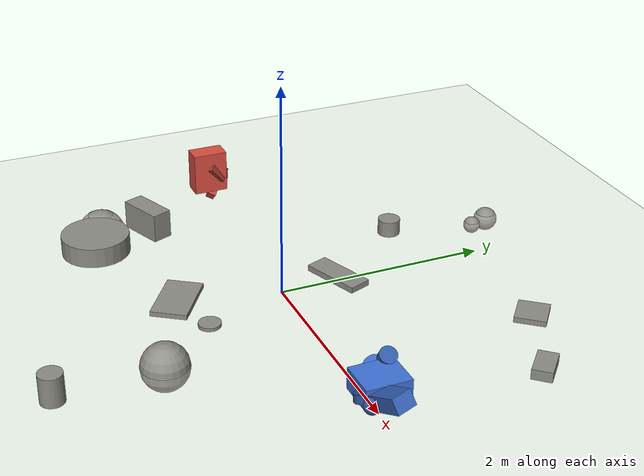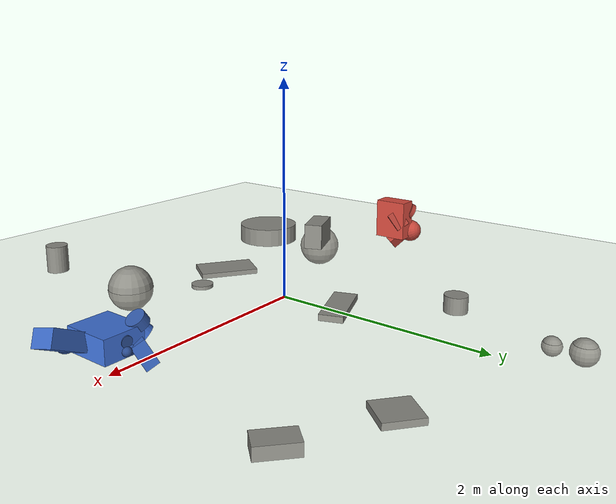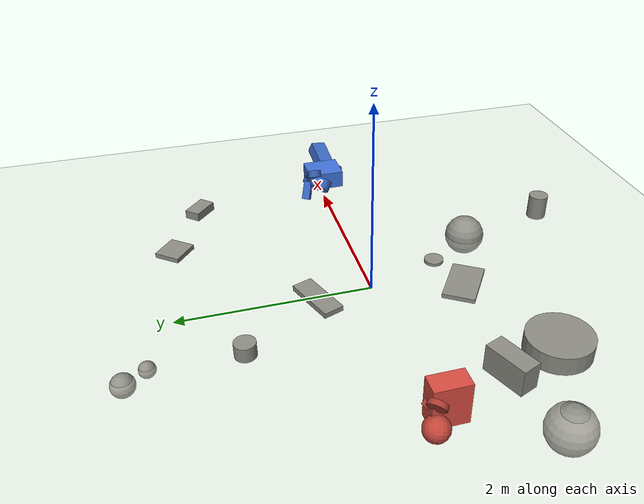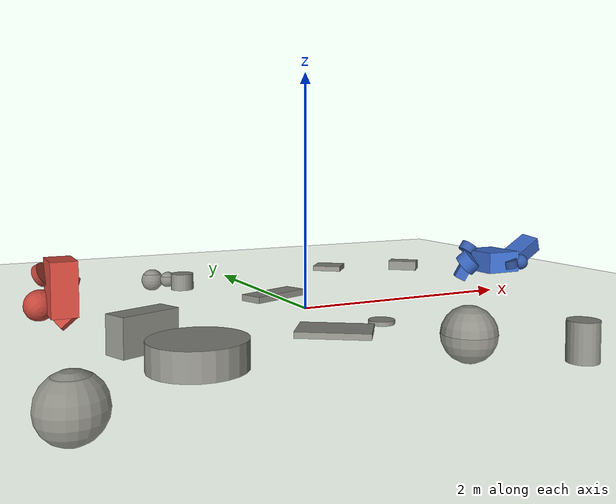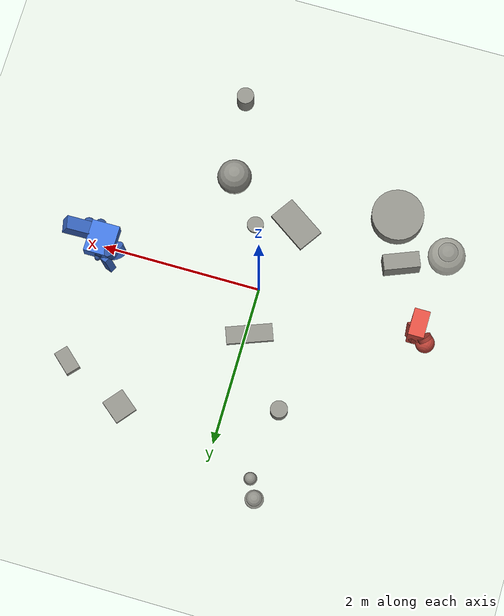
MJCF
<mujoco model="rabbitstew"><compiler angle="radian" autolimits="true" /><option timestep="0.005" gravity="0 0 -9.81" /><default><geom friction="1 0.005 0.0001" condim="3" solref="0.01 1" solimp="0.9 0.95 0.001" /><joint armature="0.005" /><motor ctrllimited="true" ctrlrange="-1 1" /></default><worldbody><geom name="floor" type="plane" size="0 0 1" rgba="0.85 0.85 0.8 1" /><light pos="0 0 4" dir="0 0 -1" diffuse="0.8 0.8 0.8" /><geom name="scenery0" pos="0.274393 -0.789465 0.0168193" quat="1 0 0 0" rgba="0.55 0.55 0.52 1" type="cylinder" size="0.103575 0.0168193" /><geom name="scenery1" pos="1.99224 1.51865 0.0488218" quat="0.359283 0 0 0.933228" rgba="0.55 0.55 0.52 1" type="box" size="0.15244 0.09049 0.0488218" /><geom name="scenery2" pos="-0.660292 2.49746 -0.0733741" quat="1 0 0 0" rgba="0.55 0.55 0.52 1" type="sphere" size="0.115593" /><geom name="scenery3" pos="-0.0430546 0.576472 0.0284663" quat="0.983827 0 0 0.179122" rgba="0.55 0.55 0.52 1" type="box" size="0.287547 0.108584 0.0284663" /><geom name="scenery4" pos="-0.654336 1.39896 0.077277" quat="1 0 0 0" rgba="0.55 0.55 0.52 1" type="cylinder" size="0.10688 0.077277" /><geom name="scenery5" pos="0.702605 -1.33104 -0.0148901" quat="1 0 0 0" rgba="0.55 0.55 0.52 1" type="sphere" size="0.216394" /><geom name="scenery6" pos="-1.42504 -1.21746 0.015152" quat="0.999509 0 0 0.0313454" rgba="0.55 0.55 0.52 1" type="box" size="0.212182 0.0766508 0.015152" /><geom name="scenery7" pos="1.2179 1.87812 0.0262678" quat="0.335719 0 0 0.941962" rgba="0.55 0.55 0.52 1" type="box" size="0.153828 0.143358 0.0262678" /><geom name="scenery8" pos="-2.11916 -1.11847 -0.205125" quat="1 0 0 0" rgba="0.55 0.55 0.52 1" type="sphere" size="0.236342" /><geom name="scenery9" pos="-1.59417 -0.771576 0.138429" quat="0.981845 0 0 0.189686" rgba="0.55 0.55 0.52 1" type="box" size="0.224354 0.0992864 0.138429" /><geom name="scenery10" pos="-0.213997 -0.928283 0.0236564" quat="0.292485 0 0 0.95627" rgba="0.55 0.55 0.52 1" type="box" size="0.281802 0.169326 0.0236564" /><geom name="scenery11" pos="0.840916 -2.30689 0.135354" quat="1 0 0 0" rgba="0.55 0.55 0.52 1" type="cylinder" size="0.106933 0.135354" /><geom name="scenery12" pos="-0.548658 2.27631 -0.0425263" quat="1 0 0 0" rgba="0.55 0.55 0.52 1" type="sphere" size="0.0815992" /><geom name="scenery13" pos="-1.39923 -1.35211 0.0957392" quat="1 0 0 0" rgba="0.55 0.55 0.52 1" type="cylinder" size="0.325485 0.0957392" /><body name="r0_p0" pos="-2 2.44929e-16 0.347381" quat="1 -0 -0 -6.12323e-17"><freejoint name="r0_root" /><geom type="box" size="0.0977665 0.16795 0.205544" name="r0_g0" pos="0 0 0" mass="9.94267" rgba="0.850 0.300 0.250 1" /><body name="r0_p1" pos="-0.00374231 0.0134436 -0.205544" quat="0.415653 0.715402 0.559972 0.0431762"><joint name="r0_j1" type="ball" damping="0.136052" /><geom type="box" size="0.0399866 0.0686915 0.0840676" name="r0_g1" pos="0.0399866 0 0" mass="0.68026" rgba="0.748 0.264 0.220 1" /><body name="r0_p3" pos="-0.0399866 0.0439184 -0.0164411" quat="0.467082 -0.355553 0.49701 0.63906"><joint name="r0_j3" type="slide" axis="0.0655155 0.985372 0.15732" damping="0.136052" range="-0.0359682 0.0359682" /><geom type="sphere" size="0.0486847" name="r0_g3" pos="0.0486847 0 0" mass="0.177994" rgba="0.646 0.228 0.190 1" /><body name="r0_p6" pos="-0.0392927 -0.0264401 0.0112787" quat="0.622881 0.44379 0.10514 -0.635621"><joint name="r0_j6" type="ball" damping="0.0355988" /><geom type="box" size="0.0306488 0.0404887 0.0248288" name="r0_g6" pos="0.0306488 0 0" mass="0.090768" rgba="0.544 0.192 0.160 1" /></body><body name="r0_p7" pos="-0.0328504 0.0236419 0.0270575" quat="-0.170404 -0.286813 0.235174 0.912904"><joint name="r0_j7" type="ball" damping="0.0159083" /><geom type="cylinder" size="0.0498016 0.0138608" quat="0.707107 0 0.707107 0" name="r0_g7" pos="0.0138608 0 0" mass="0.0795413" rgba="0.544 0.192 0.160 1" /></body></body></body><body name="r0_p2" pos="-0.0977665 0.10738 -0.0401983" quat="0.467082 -0.355553 0.49701 0.63906"><joint name="r0_j2" type="slide" axis="0.0655155 0.985372 0.15732" damping="1.98853" range="-0.0879416 0.0879416" /><geom type="sphere" size="0.119033" name="r0_g2" pos="0.119033 0 0" mass="2.60155" rgba="0.748 0.264 0.220 1" /><body name="r0_p4" pos="-0.0960699 -0.0646455 0.0275761" quat="0.622881 0.44379 0.10514 -0.635621"><joint name="r0_j4" type="ball" damping="0.520311" /><geom type="box" size="0.0749358 0.0989943 0.0607061" name="r0_g4" pos="0.0749358 0 0" mass="1.32666" rgba="0.646 0.228 0.190 1" /></body><body name="r0_p5" pos="-0.0803187 0.0578041 0.0661552" quat="-0.170404 -0.286813 0.235174 0.912904"><joint name="r0_j5" type="ball" damping="0.0881109" /><geom type="cylinder" size="0.0881142 0.0245239" quat="0.707107 0 0.707107 0" name="r0_g5" pos="0.0245239 0 0" mass="0.440554" rgba="0.646 0.228 0.190 1" /></body></body></body><body name="r1_p0" pos="2 -4.89859e-16 0.292479" quat="6.12323e-17 0 0 1"><freejoint name="r1_root" /><geom type="box" size="0.174103 0.200286 0.0967873" name="r1_g0" pos="0 0 0" mass="8.78139" rgba="0.250 0.450 0.850 1" /><body name="r1_p1" pos="0.174103 -0.0440019 0.024679" quat="0.767107 0.399203 0.213294 -0.454632"><joint name="r1_j1" type="ball" damping="1.75628" /><geom type="cylinder" size="0.111439 0.0593671" quat="0.707107 0 0.707107 0" name="r1_g1" pos="0.0593671 0 0" mass="1.50661" rgba="0.220 0.396 0.748 1" /><body name="r1_p4" pos="0.0263895 0.00738878 0.111194" quat="0.223253 0.11078 -0.954007 0.166605"><geom type="cylinder" size="0.076748 0.0408861" quat="0.707107 0 0.707107 0" name="r1_g4" pos="0.0408861 0 0" mass="0.492141" rgba="0.190 0.342 0.646 1" /></body></body><body name="r1_p2" pos="0.0969063 -0.200286 -0.0135157" quat="0.827599 0.0915006 0.507404 -0.22192"><joint name="r1_j2" type="slide" axis="-0.779104 -0.462911 0.422742" damping="1.75628" range="-0.166602 0.166602" /><geom type="box" size="0.106362 0.043848 0.0553281" name="r1_g2" pos="0.106362 0 0" mass="0.671383" rgba="0.220 0.396 0.748 1" /><body name="r1_p5" pos="-0.0309599 0.0117431 -0.0553281" quat="0.984841 0.147275 0.054602 -0.0735993"><joint name="r1_j5" type="slide" axis="0.772304 0.458807 -0.439365" damping="0.134277" range="-0.10815 0.10815" /><geom type="sphere" size="0.0460523" name="r1_g5" pos="0.0460523 0 0" mass="0.133058" rgba="0.190 0.342 0.646 1" /><body name="r1_p7" pos="-0.0379857 -0.026009 -0.00119732" quat="0.72425 -0.368818 -0.0722301 -0.578115"><geom type="cylinder" size="0.0437682 0.0233167" quat="0.707107 0 0.707107 0" name="r1_g7" pos="0.0233167 0 0" mass="0.0912773" rgba="0.160 0.288 0.544 1" /></body><body name="r1_p8" pos="0.0249953 -0.0362263 0.0135538" quat="0.833742 0.0236139 0.322381 -0.447647"><joint name="r1_j8" type="ball" damping="0.0266117" /><geom type="sphere" size="0.037221" name="r1_g8" pos="0.037221 0 0" mass="0.0702511" rgba="0.160 0.288 0.544 1" /></body></body></body><body name="r1_p3" pos="-0.174103 0.0800441 0.00246033" quat="0.088069 0.221053 -0.603555 0.760986"><joint name="r1_j3" type="ball" damping="1.75628" /><geom type="box" size="0.169012 0.0696756 0.0879177" name="r1_g3" pos="0.169012 0 0" mass="2.69379" rgba="0.220 0.396 0.748 1" /><body name="r1_p6" pos="-0.0491961 0.0186601 -0.0879177" quat="0.984841 0.147275 0.054602 -0.0735993"><joint name="r1_j6" type="slide" axis="0.772304 0.458807 -0.439365" damping="0.538758" range="-0.171854 0.171854" /><geom type="sphere" size="0.0731783" name="r1_g6" pos="0.0731783 0 0" mass="0.53387" rgba="0.190 0.342 0.646 1" /><body name="r1_p9" pos="-0.0603603 -0.0413289 -0.00190258" quat="0.72425 -0.368818 -0.0722301 -0.578115"><geom type="cylinder" size="0.0695487 0.0370508" quat="0.707107 0 0.707107 0" name="r1_g9" pos="0.0370508 0 0" mass="0.366232" rgba="0.160 0.288 0.544 1" /></body></body></body></body></worldbody><actuator><general name="r0_a2_0" joint="r0_j2" gaintype="fixed" biastype="affine" gainprm="39.7707" biasprm="0 0 -33.1422" /><general name="r0_a3_0" joint="r0_j3" gaintype="fixed" biastype="affine" gainprm="2.72104" biasprm="0 0 -2.26753" /><motor name="r0_a4_1" joint="r0_j4" gear="0 10.4062 0" /><motor name="r0_a4_2" joint="r0_j4" gear="0 0 10.4062" /><motor name="r0_a6_1" joint="r0_j6" gear="0 0.711975 0" /><motor name="r0_a6_2" joint="r0_j6" gear="0 0 0.711975" /><motor name="r1_a1_2" joint="r1_j1" gear="0 0 35.1256" /><general name="r1_a2_0" joint="r1_j2" gaintype="fixed" biastype="affine" gainprm="35.1256" biasprm="0 -210.835 -21.0835" /><motor name="r1_a3_0" joint="r1_j3" gear="35.1256 0 0" /><motor name="r1_a3_2" joint="r1_j3" gear="0 0 35.1256" /><motor name="r1_a5_0" joint="r1_j5" gear="2.68553" /><motor name="r1_a6_0" joint="r1_j6" gear="10.7752" /><motor name="r1_a8_2" joint="r1_j8" gear="0 0 0.532234" /></actuator></mujoco>
